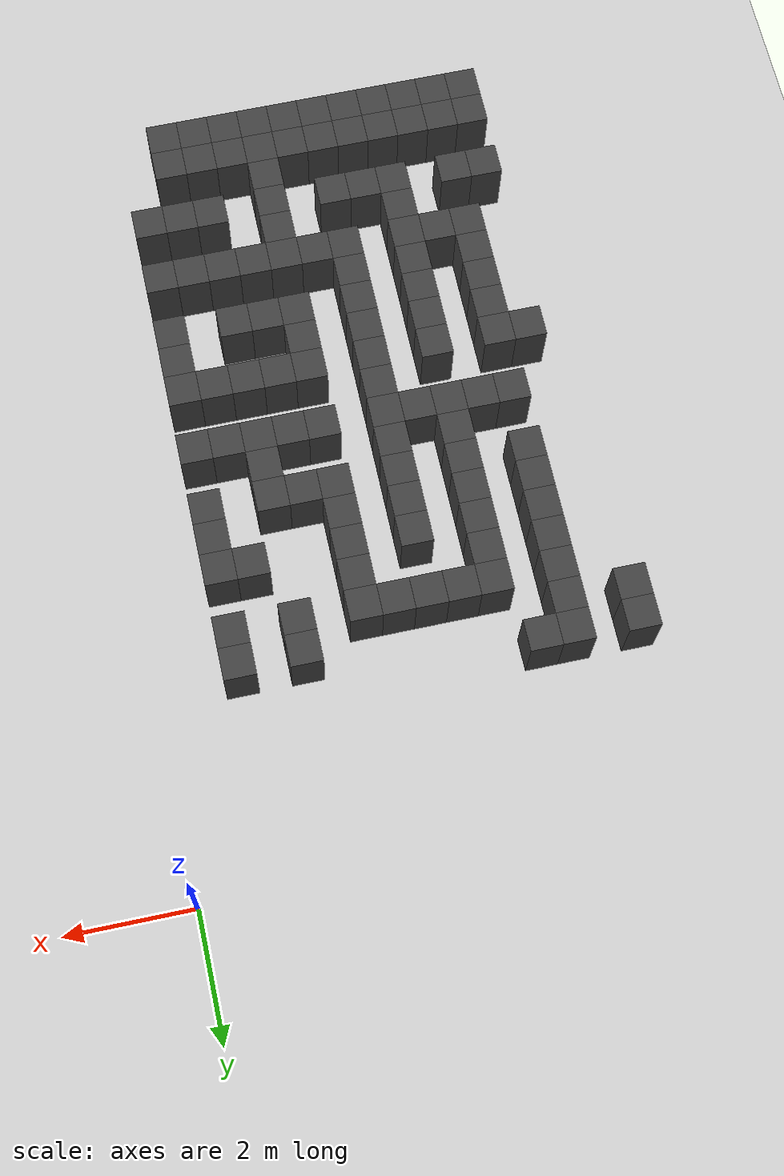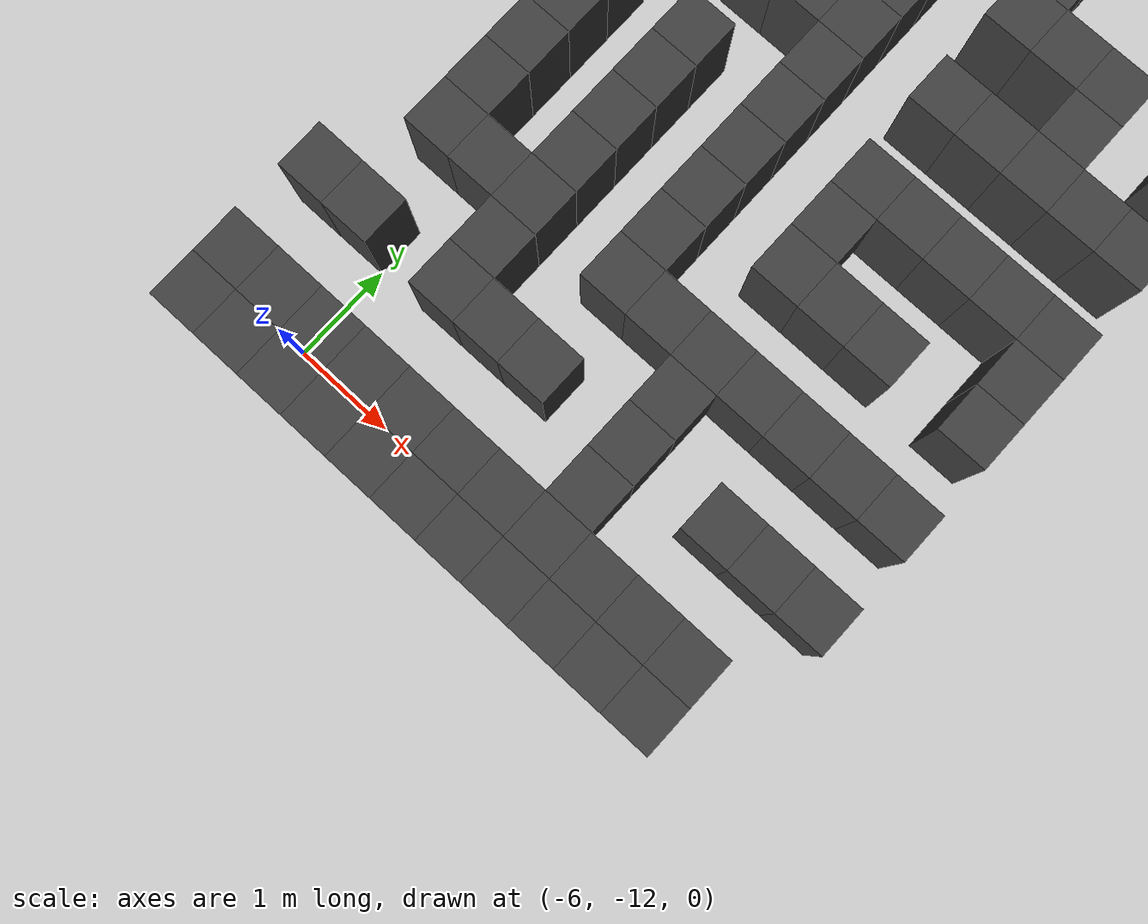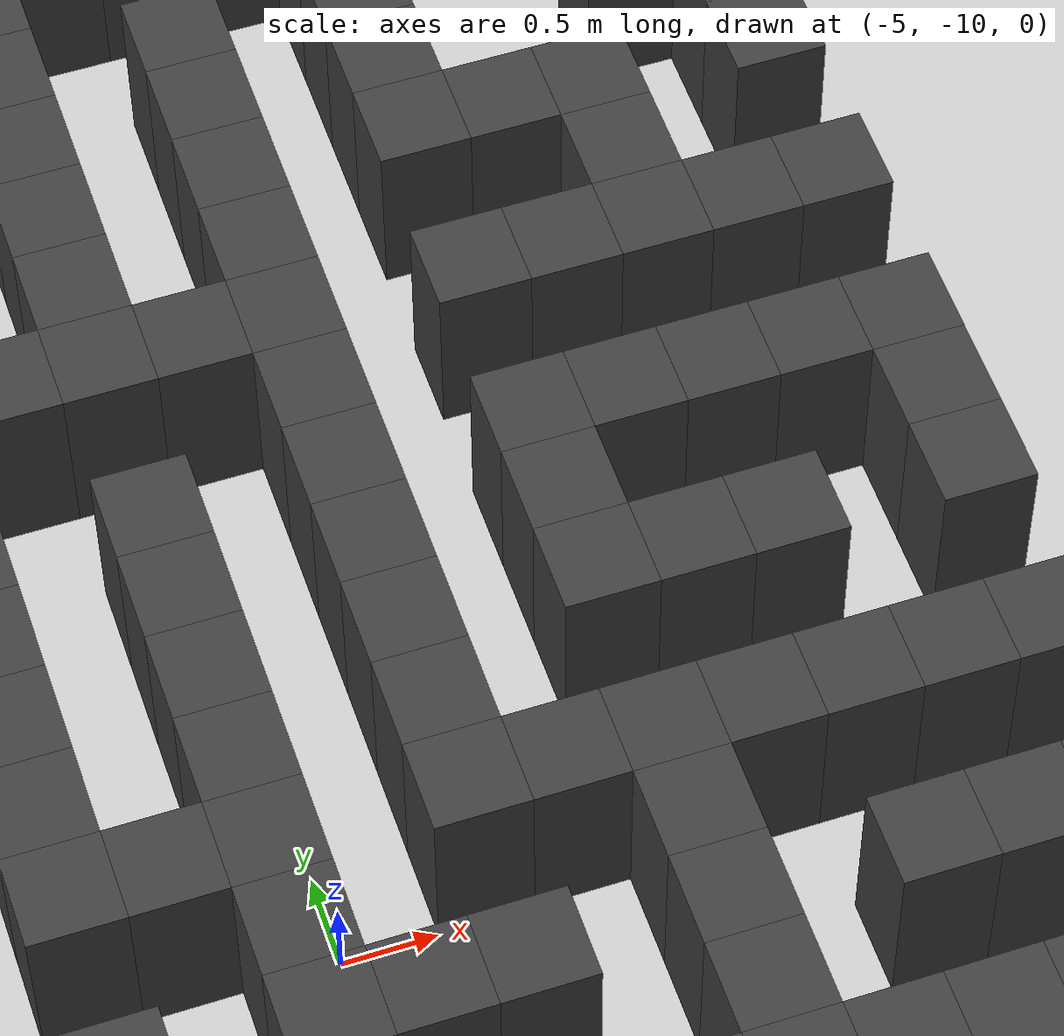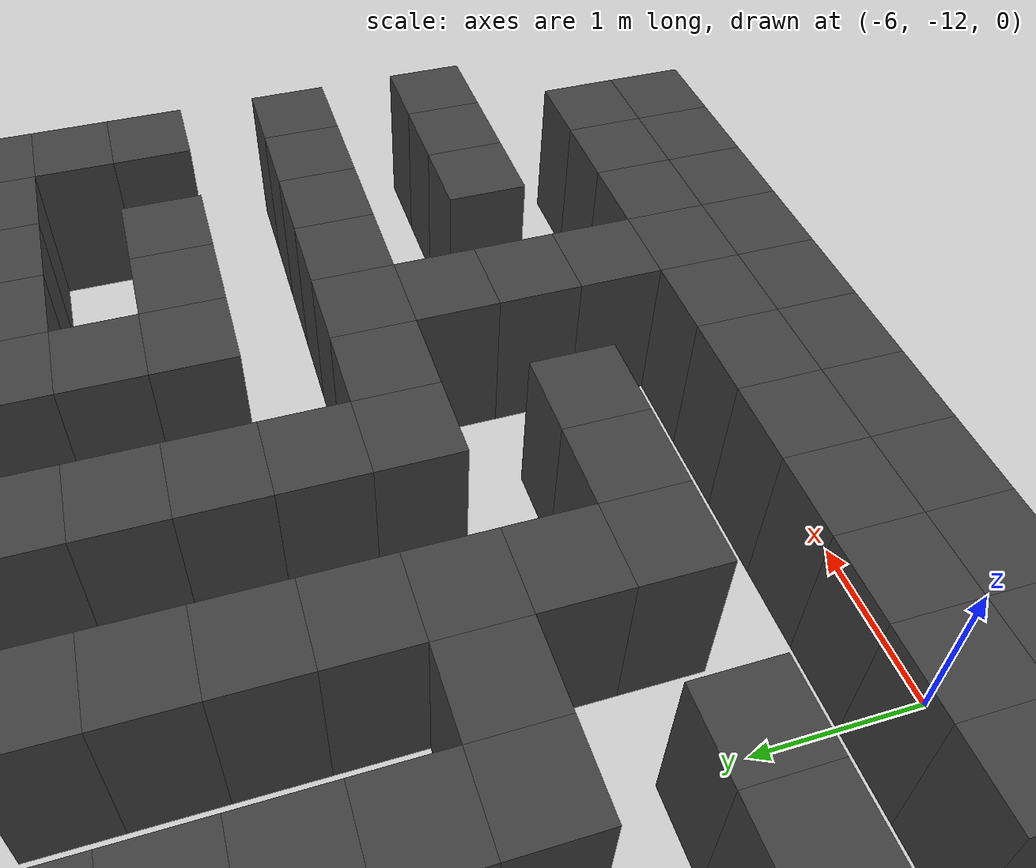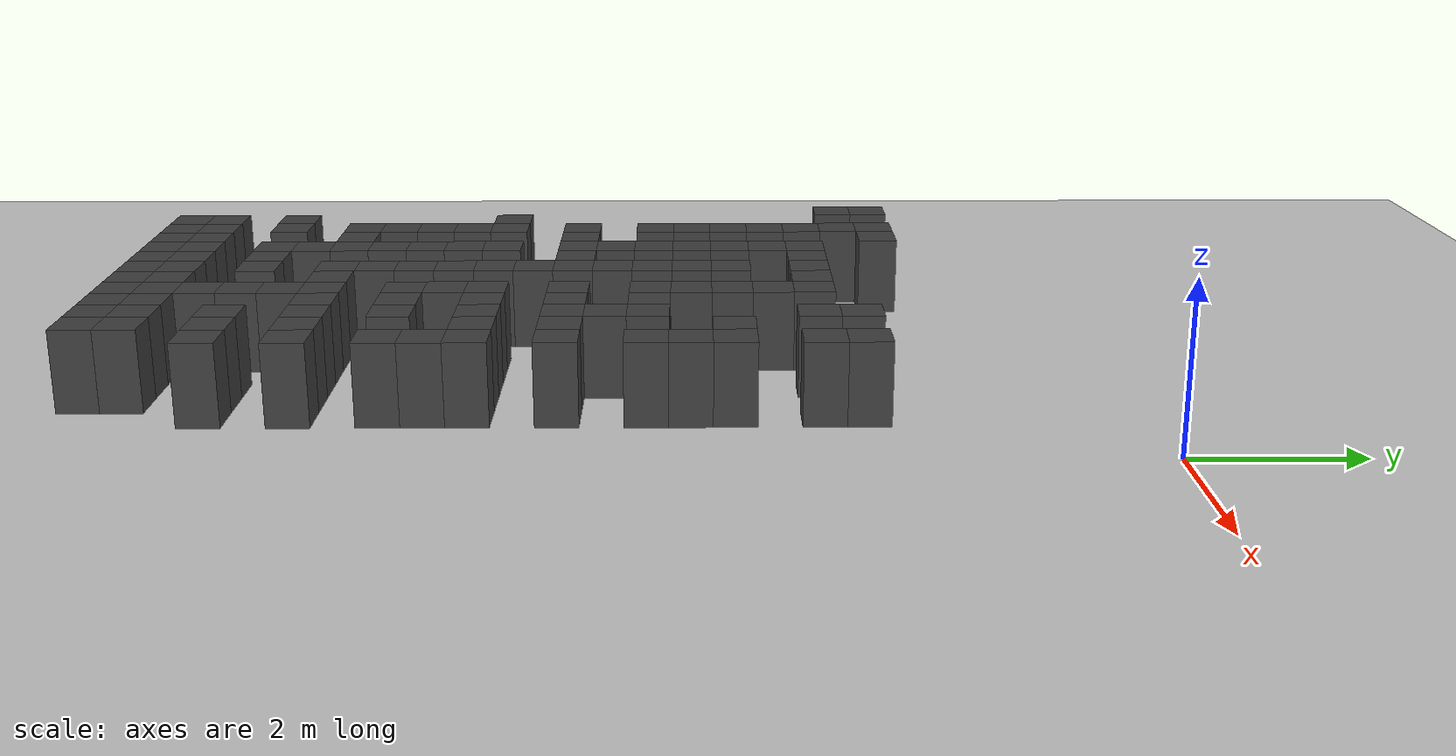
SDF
<sdf version="1.7">
 <world name="map_18332">
  <model name="ground_plane">
   <static>true</static>
   <link name="link">
    <collision name="collision">
     <geometry><plane><normal>0 0 1</normal><size>200 200</size></plane></geometry>
    </collision>
    <visual name="visual">
     <geometry><plane><normal>0 0 1</normal><size>200 200</size></plane></geometry>
     <material><ambient>0.8 0.8 0.8 1</ambient><diffuse>0.8 0.8 0.8 1</diffuse></material>
    </visual>
   </link>
  </model>
  <model name="maze_environment">
   <static>true</static>
   <link name="wall_761">
    <pose>-7.250 -2.750 0.500 0 0 0</pose>
    <collision name="col"><geometry><box><size>0.5 0.5 1.0</size></box></geometry></collision>
    <visual name="vis">
     <geometry><box><size>0.5 0.5 1.0</size></box></geometry>
     <material><ambient>0.15 0.15 0.15 1</ambient><diffuse>0.25 0.25 0.25 1</diffuse></material>
    </visual>
   </link>
   <link name="wall_762">
    <pose>-6.250 -2.750 0.500 0 0 0</pose>
    <collision name="col"><geometry><box><size>0.5 0.5 1.0</size></box></geometry></collision>
    <visual name="vis">
     <geometry><box><size>0.5 0.5 1.0</size></box></geometry>
     <material><ambient>0.15 0.15 0.15 1</ambient><diffuse>0.25 0.25 0.25 1</diffuse></material>
    </visual>
   </link>
   <link name="wall_763">
    <pose>-5.750 -2.750 0.500 0 0 0</pose>
    <collision name="col"><geometry><box><size>0.5 0.5 1.0</size></box></geometry></collision>
    <visual name="vis">
     <geometry><box><size>0.5 0.5 1.0</size></box></geometry>
     <material><ambient>0.15 0.15 0.15 1</ambient><diffuse>0.25 0.25 0.25 1</diffuse></material>
    </visual>
   </link>
   <link name="wall_796">
    <pose>-7.250 -3.250 0.500 0 0 0</pose>
    <collision name="col"><geometry><box><size>0.5 0.5 1.0</size></box></geometry></collision>
    <visual name="vis">
     <geometry><box><size>0.5 0.5 1.0</size></box></geometry>
     <material><ambient>0.15 0.15 0.15 1</ambient><diffuse>0.25 0.25 0.25 1</diffuse></material>
    </visual>
   </link>
   <link name="wall_797">
    <pose>-6.250 -3.250 0.500 0 0 0</pose>
    <collision name="col"><geometry><box><size>0.5 0.5 1.0</size></box></geometry></collision>
    <visual name="vis">
     <geometry><box><size>0.5 0.5 1.0</size></box></geometry>
     <material><ambient>0.15 0.15 0.15 1</ambient><diffuse>0.25 0.25 0.25 1</diffuse></material>
    </visual>
   </link>
   <link name="wall_798">
    <pose>-2.250 -3.250 0.500 0 0 0</pose>
    <collision name="col"><geometry><box><size>0.5 0.5 1.0</size></box></geometry></collision>
    <visual name="vis">
     <geometry><box><size>0.5 0.5 1.0</size></box></geometry>
     <material><ambient>0.15 0.15 0.15 1</ambient><diffuse>0.25 0.25 0.25 1</diffuse></material>
    </visual>
   </link>
   <link name="wall_799">
    <pose>-1.250 -3.250 0.500 0 0 0</pose>
    <collision name="col"><geometry><box><size>0.5 0.5 1.0</size></box></geometry></collision>
    <visual name="vis">
     <geometry><box><size>0.5 0.5 1.0</size></box></geometry>
     <material><ambient>0.15 0.15 0.15 1</ambient><diffuse>0.25 0.25 0.25 1</diffuse></material>
    </visual>
   </link>
   <link name="wall_814">
    <pose>-6.250 -3.750 0.500 0 0 0</pose>
    <collision name="col"><geometry><box><size>0.5 0.5 1.0</size></box></geometry></collision>
    <visual name="vis">
     <geometry><box><size>0.5 0.5 1.0</size></box></geometry>
     <material><ambient>0.15 0.15 0.15 1</ambient><diffuse>0.25 0.25 0.25 1</diffuse></material>
    </visual>
   </link>
   <link name="wall_815">
    <pose>-5.250 -3.750 0.500 0 0 0</pose>
    <collision name="col"><geometry><box><size>0.5 0.5 1.0</size></box></geometry></collision>
    <visual name="vis">
     <geometry><box><size>0.5 0.5 1.0</size></box></geometry>
     <material><ambient>0.15 0.15 0.15 1</ambient><diffuse>0.25 0.25 0.25 1</diffuse></material>
    </visual>
   </link>
   <link name="wall_816">
    <pose>-4.750 -3.750 0.500 0 0 0</pose>
    <collision name="col"><geometry><box><size>0.5 0.5 1.0</size></box></geometry></collision>
    <visual name="vis">
     <geometry><box><size>0.5 0.5 1.0</size></box></geometry>
     <material><ambient>0.15 0.15 0.15 1</ambient><diffuse>0.25 0.25 0.25 1</diffuse></material>
    </visual>
   </link>
   <link name="wall_817">
    <pose>-4.250 -3.750 0.500 0 0 0</pose>
    <collision name="col"><geometry><box><size>0.5 0.5 1.0</size></box></geometry></collision>
    <visual name="vis">
     <geometry><box><size>0.5 0.5 1.0</size></box></geometry>
     <material><ambient>0.15 0.15 0.15 1</ambient><diffuse>0.25 0.25 0.25 1</diffuse></material>
    </visual>
   </link>
   <link name="wall_818">
    <pose>-3.750 -3.750 0.500 0 0 0</pose>
    <collision name="col"><geometry><box><size>0.5 0.5 1.0</size></box></geometry></collision>
    <visual name="vis">
     <geometry><box><size>0.5 0.5 1.0</size></box></geometry>
     <material><ambient>0.15 0.15 0.15 1</ambient><diffuse>0.25 0.25 0.25 1</diffuse></material>
    </visual>
   </link>
   <link name="wall_819">
    <pose>-3.250 -3.750 0.500 0 0 0</pose>
    <collision name="col"><geometry><box><size>0.5 0.5 1.0</size></box></geometry></collision>
    <visual name="vis">
     <geometry><box><size>0.5 0.5 1.0</size></box></geometry>
     <material><ambient>0.15 0.15 0.15 1</ambient><diffuse>0.25 0.25 0.25 1</diffuse></material>
    </visual>
   </link>
   <link name="wall_820">
    <pose>-2.250 -3.750 0.500 0 0 0</pose>
    <collision name="col"><geometry><box><size>0.5 0.5 1.0</size></box></geometry></collision>
    <visual name="vis">
     <geometry><box><size>0.5 0.5 1.0</size></box></geometry>
     <material><ambient>0.15 0.15 0.15 1</ambient><diffuse>0.25 0.25 0.25 1</diffuse></material>
    </visual>
   </link>
   <link name="wall_821">
    <pose>-1.250 -3.750 0.500 0 0 0</pose>
    <collision name="col"><geometry><box><size>0.5 0.5 1.0</size></box></geometry></collision>
    <visual name="vis">
     <geometry><box><size>0.5 0.5 1.0</size></box></geometry>
     <material><ambient>0.15 0.15 0.15 1</ambient><diffuse>0.25 0.25 0.25 1</diffuse></material>
    </visual>
   </link>
   <link name="wall_844">
    <pose>-6.250 -4.250 0.500 0 0 0</pose>
    <collision name="col"><geometry><box><size>0.5 0.5 1.0</size></box></geometry></collision>
    <visual name="vis">
     <geometry><box><size>0.5 0.5 1.0</size></box></geometry>
     <material><ambient>0.15 0.15 0.15 1</ambient><diffuse>0.25 0.25 0.25 1</diffuse></material>
    </visual>
   </link>
   <link name="wall_845">
    <pose>-5.250 -4.250 0.500 0 0 0</pose>
    <collision name="col"><geometry><box><size>0.5 0.5 1.0</size></box></geometry></collision>
    <visual name="vis">
     <geometry><box><size>0.5 0.5 1.0</size></box></geometry>
     <material><ambient>0.15 0.15 0.15 1</ambient><diffuse>0.25 0.25 0.25 1</diffuse></material>
    </visual>
   </link>
   <link name="wall_846">
    <pose>-3.250 -4.250 0.500 0 0 0</pose>
    <collision name="col"><geometry><box><size>0.5 0.5 1.0</size></box></geometry></collision>
    <visual name="vis">
     <geometry><box><size>0.5 0.5 1.0</size></box></geometry>
     <material><ambient>0.15 0.15 0.15 1</ambient><diffuse>0.25 0.25 0.25 1</diffuse></material>
    </visual>
   </link>
   <link name="wall_865">
    <pose>-6.250 -4.750 0.500 0 0 0</pose>
    <collision name="col"><geometry><box><size>0.5 0.5 1.0</size></box></geometry></collision>
    <visual name="vis">
     <geometry><box><size>0.5 0.5 1.0</size></box></geometry>
     <material><ambient>0.15 0.15 0.15 1</ambient><diffuse>0.25 0.25 0.25 1</diffuse></material>
    </visual>
   </link>
   <link name="wall_866">
    <pose>-5.250 -4.750 0.500 0 0 0</pose>
    <collision name="col"><geometry><box><size>0.5 0.5 1.0</size></box></geometry></collision>
    <visual name="vis">
     <geometry><box><size>0.5 0.5 1.0</size></box></geometry>
     <material><ambient>0.15 0.15 0.15 1</ambient><diffuse>0.25 0.25 0.25 1</diffuse></material>
    </visual>
   </link>
   <link name="wall_867">
    <pose>-4.250 -4.750 0.500 0 0 0</pose>
    <collision name="col"><geometry><box><size>0.5 0.5 1.0</size></box></geometry></collision>
    <visual name="vis">
     <geometry><box><size>0.5 0.5 1.0</size></box></geometry>
     <material><ambient>0.15 0.15 0.15 1</ambient><diffuse>0.25 0.25 0.25 1</diffuse></material>
    </visual>
   </link>
   <link name="wall_868">
    <pose>-3.250 -4.750 0.500 0 0 0</pose>
    <collision name="col"><geometry><box><size>0.5 0.5 1.0</size></box></geometry></collision>
    <visual name="vis">
     <geometry><box><size>0.5 0.5 1.0</size></box></geometry>
     <material><ambient>0.15 0.15 0.15 1</ambient><diffuse>0.25 0.25 0.25 1</diffuse></material>
    </visual>
   </link>
   <link name="wall_869">
    <pose>-1.750 -4.750 0.500 0 0 0</pose>
    <collision name="col"><geometry><box><size>0.5 0.5 1.0</size></box></geometry></collision>
    <visual name="vis">
     <geometry><box><size>0.5 0.5 1.0</size></box></geometry>
     <material><ambient>0.15 0.15 0.15 1</ambient><diffuse>0.25 0.25 0.25 1</diffuse></material>
    </visual>
   </link>
   <link name="wall_870">
    <pose>-1.250 -4.750 0.500 0 0 0</pose>
    <collision name="col"><geometry><box><size>0.5 0.5 1.0</size></box></geometry></collision>
    <visual name="vis">
     <geometry><box><size>0.5 0.5 1.0</size></box></geometry>
     <material><ambient>0.15 0.15 0.15 1</ambient><diffuse>0.25 0.25 0.25 1</diffuse></material>
    </visual>
   </link>
   <link name="wall_894">
    <pose>-6.250 -5.250 0.500 0 0 0</pose>
    <collision name="col"><geometry><box><size>0.5 0.5 1.0</size></box></geometry></collision>
    <visual name="vis">
     <geometry><box><size>0.5 0.5 1.0</size></box></geometry>
     <material><ambient>0.15 0.15 0.15 1</ambient><diffuse>0.25 0.25 0.25 1</diffuse></material>
    </visual>
   </link>
   <link name="wall_895">
    <pose>-5.250 -5.250 0.500 0 0 0</pose>
    <collision name="col"><geometry><box><size>0.5 0.5 1.0</size></box></geometry></collision>
    <visual name="vis">
     <geometry><box><size>0.5 0.5 1.0</size></box></geometry>
     <material><ambient>0.15 0.15 0.15 1</ambient><diffuse>0.25 0.25 0.25 1</diffuse></material>
    </visual>
   </link>
   <link name="wall_896">
    <pose>-4.250 -5.250 0.500 0 0 0</pose>
    <collision name="col"><geometry><box><size>0.5 0.5 1.0</size></box></geometry></collision>
    <visual name="vis">
     <geometry><box><size>0.5 0.5 1.0</size></box></geometry>
     <material><ambient>0.15 0.15 0.15 1</ambient><diffuse>0.25 0.25 0.25 1</diffuse></material>
    </visual>
   </link>
   <link name="wall_897">
    <pose>-3.250 -5.250 0.500 0 0 0</pose>
    <collision name="col"><geometry><box><size>0.5 0.5 1.0</size></box></geometry></collision>
    <visual name="vis">
     <geometry><box><size>0.5 0.5 1.0</size></box></geometry>
     <material><ambient>0.15 0.15 0.15 1</ambient><diffuse>0.25 0.25 0.25 1</diffuse></material>
    </visual>
   </link>
   <link name="wall_898">
    <pose>-1.250 -5.250 0.500 0 0 0</pose>
    <collision name="col"><geometry><box><size>0.5 0.5 1.0</size></box></geometry></collision>
    <visual name="vis">
     <geometry><box><size>0.5 0.5 1.0</size></box></geometry>
     <material><ambient>0.15 0.15 0.15 1</ambient><diffuse>0.25 0.25 0.25 1</diffuse></material>
    </visual>
   </link>
   <link name="wall_911">
    <pose>-6.250 -5.750 0.500 0 0 0</pose>
    <collision name="col"><geometry><box><size>0.5 0.5 1.0</size></box></geometry></collision>
    <visual name="vis">
     <geometry><box><size>0.5 0.5 1.0</size></box></geometry>
     <material><ambient>0.15 0.15 0.15 1</ambient><diffuse>0.25 0.25 0.25 1</diffuse></material>
    </visual>
   </link>
   <link name="wall_912">
    <pose>-5.250 -5.750 0.500 0 0 0</pose>
    <collision name="col"><geometry><box><size>0.5 0.5 1.0</size></box></geometry></collision>
    <visual name="vis">
     <geometry><box><size>0.5 0.5 1.0</size></box></geometry>
     <material><ambient>0.15 0.15 0.15 1</ambient><diffuse>0.25 0.25 0.25 1</diffuse></material>
    </visual>
   </link>
   <link name="wall_913">
    <pose>-4.250 -5.750 0.500 0 0 0</pose>
    <collision name="col"><geometry><box><size>0.5 0.5 1.0</size></box></geometry></collision>
    <visual name="vis">
     <geometry><box><size>0.5 0.5 1.0</size></box></geometry>
     <material><ambient>0.15 0.15 0.15 1</ambient><diffuse>0.25 0.25 0.25 1</diffuse></material>
    </visual>
   </link>
   <link name="wall_914">
    <pose>-3.250 -5.750 0.500 0 0 0</pose>
    <collision name="col"><geometry><box><size>0.5 0.5 1.0</size></box></geometry></collision>
    <visual name="vis">
     <geometry><box><size>0.5 0.5 1.0</size></box></geometry>
     <material><ambient>0.15 0.15 0.15 1</ambient><diffuse>0.25 0.25 0.25 1</diffuse></material>
    </visual>
   </link>
   <link name="wall_915">
    <pose>-2.750 -5.750 0.500 0 0 0</pose>
    <collision name="col"><geometry><box><size>0.5 0.5 1.0</size></box></geometry></collision>
    <visual name="vis">
     <geometry><box><size>0.5 0.5 1.0</size></box></geometry>
     <material><ambient>0.15 0.15 0.15 1</ambient><diffuse>0.25 0.25 0.25 1</diffuse></material>
    </visual>
   </link>
   <link name="wall_916">
    <pose>-2.250 -5.750 0.500 0 0 0</pose>
    <collision name="col"><geometry><box><size>0.5 0.5 1.0</size></box></geometry></collision>
    <visual name="vis">
     <geometry><box><size>0.5 0.5 1.0</size></box></geometry>
     <material><ambient>0.15 0.15 0.15 1</ambient><diffuse>0.25 0.25 0.25 1</diffuse></material>
    </visual>
   </link>
   <link name="wall_917">
    <pose>-1.250 -5.750 0.500 0 0 0</pose>
    <collision name="col"><geometry><box><size>0.5 0.5 1.0</size></box></geometry></collision>
    <visual name="vis">
     <geometry><box><size>0.5 0.5 1.0</size></box></geometry>
     <material><ambient>0.15 0.15 0.15 1</ambient><diffuse>0.25 0.25 0.25 1</diffuse></material>
    </visual>
   </link>
   <link name="wall_946">
    <pose>-5.250 -6.250 0.500 0 0 0</pose>
    <collision name="col"><geometry><box><size>0.5 0.5 1.0</size></box></geometry></collision>
    <visual name="vis">
     <geometry><box><size>0.5 0.5 1.0</size></box></geometry>
     <material><ambient>0.15 0.15 0.15 1</ambient><diffuse>0.25 0.25 0.25 1</diffuse></material>
    </visual>
   </link>
   <link name="wall_947">
    <pose>-4.250 -6.250 0.500 0 0 0</pose>
    <collision name="col"><geometry><box><size>0.5 0.5 1.0</size></box></geometry></collision>
    <visual name="vis">
     <geometry><box><size>0.5 0.5 1.0</size></box></geometry>
     <material><ambient>0.15 0.15 0.15 1</ambient><diffuse>0.25 0.25 0.25 1</diffuse></material>
    </visual>
   </link>
   <link name="wall_948">
    <pose>-2.250 -6.250 0.500 0 0 0</pose>
    <collision name="col"><geometry><box><size>0.5 0.5 1.0</size></box></geometry></collision>
    <visual name="vis">
     <geometry><box><size>0.5 0.5 1.0</size></box></geometry>
     <material><ambient>0.15 0.15 0.15 1</ambient><diffuse>0.25 0.25 0.25 1</diffuse></material>
    </visual>
   </link>
   <link name="wall_961">
    <pose>-6.250 -6.750 0.500 0 0 0</pose>
    <collision name="col"><geometry><box><size>0.5 0.5 1.0</size></box></geometry></collision>
    <visual name="vis">
     <geometry><box><size>0.5 0.5 1.0</size></box></geometry>
     <material><ambient>0.15 0.15 0.15 1</ambient><diffuse>0.25 0.25 0.25 1</diffuse></material>
    </visual>
   </link>
   <link name="wall_962">
    <pose>-5.750 -6.750 0.500 0 0 0</pose>
    <collision name="col"><geometry><box><size>0.5 0.5 1.0</size></box></geometry></collision>
    <visual name="vis">
     <geometry><box><size>0.5 0.5 1.0</size></box></geometry>
     <material><ambient>0.15 0.15 0.15 1</ambient><diffuse>0.25 0.25 0.25 1</diffuse></material>
    </visual>
   </link>
   <link name="wall_963">
    <pose>-5.250 -6.750 0.500 0 0 0</pose>
    <collision name="col"><geometry><box><size>0.5 0.5 1.0</size></box></geometry></collision>
    <visual name="vis">
     <geometry><box><size>0.5 0.5 1.0</size></box></geometry>
     <material><ambient>0.15 0.15 0.15 1</ambient><diffuse>0.25 0.25 0.25 1</diffuse></material>
    </visual>
   </link>
   <link name="wall_964">
    <pose>-4.750 -6.750 0.500 0 0 0</pose>
    <collision name="col"><geometry><box><size>0.5 0.5 1.0</size></box></geometry></collision>
    <visual name="vis">
     <geometry><box><size>0.5 0.5 1.0</size></box></geometry>
     <material><ambient>0.15 0.15 0.15 1</ambient><diffuse>0.25 0.25 0.25 1</diffuse></material>
    </visual>
   </link>
   <link name="wall_965">
    <pose>-4.250 -6.750 0.500 0 0 0</pose>
    <collision name="col"><geometry><box><size>0.5 0.5 1.0</size></box></geometry></collision>
    <visual name="vis">
     <geometry><box><size>0.5 0.5 1.0</size></box></geometry>
     <material><ambient>0.15 0.15 0.15 1</ambient><diffuse>0.25 0.25 0.25 1</diffuse></material>
    </visual>
   </link>
   <link name="wall_966">
    <pose>-3.250 -6.750 0.500 0 0 0</pose>
    <collision name="col"><geometry><box><size>0.5 0.5 1.0</size></box></geometry></collision>
    <visual name="vis">
     <geometry><box><size>0.5 0.5 1.0</size></box></geometry>
     <material><ambient>0.15 0.15 0.15 1</ambient><diffuse>0.25 0.25 0.25 1</diffuse></material>
    </visual>
   </link>
   <link name="wall_967">
    <pose>-2.750 -6.750 0.500 0 0 0</pose>
    <collision name="col"><geometry><box><size>0.5 0.5 1.0</size></box></geometry></collision>
    <visual name="vis">
     <geometry><box><size>0.5 0.5 1.0</size></box></geometry>
     <material><ambient>0.15 0.15 0.15 1</ambient><diffuse>0.25 0.25 0.25 1</diffuse></material>
    </visual>
   </link>
   <link name="wall_968">
    <pose>-2.250 -6.750 0.500 0 0 0</pose>
    <collision name="col"><geometry><box><size>0.5 0.5 1.0</size></box></geometry></collision>
    <visual name="vis">
     <geometry><box><size>0.5 0.5 1.0</size></box></geometry>
     <material><ambient>0.15 0.15 0.15 1</ambient><diffuse>0.25 0.25 0.25 1</diffuse></material>
    </visual>
   </link>
   <link name="wall_969">
    <pose>-1.750 -6.750 0.500 0 0 0</pose>
    <collision name="col"><geometry><box><size>0.5 0.5 1.0</size></box></geometry></collision>
    <visual name="vis">
     <geometry><box><size>0.5 0.5 1.0</size></box></geometry>
     <material><ambient>0.15 0.15 0.15 1</ambient><diffuse>0.25 0.25 0.25 1</diffuse></material>
    </visual>
   </link>
   <link name="wall_970">
    <pose>-1.250 -6.750 0.500 0 0 0</pose>
    <collision name="col"><geometry><box><size>0.5 0.5 1.0</size></box></geometry></collision>
    <visual name="vis">
     <geometry><box><size>0.5 0.5 1.0</size></box></geometry>
     <material><ambient>0.15 0.15 0.15 1</ambient><diffuse>0.25 0.25 0.25 1</diffuse></material>
    </visual>
   </link>
   <link name="wall_995">
    <pose>-4.250 -7.250 0.500 0 0 0</pose>
    <collision name="col"><geometry><box><size>0.5 0.5 1.0</size></box></geometry></collision>
    <visual name="vis">
     <geometry><box><size>0.5 0.5 1.0</size></box></geometry>
     <material><ambient>0.15 0.15 0.15 1</ambient><diffuse>0.25 0.25 0.25 1</diffuse></material>
    </visual>
   </link>
   <link name="wall_1013">
    <pose>-6.750 -7.750 0.500 0 0 0</pose>
    <collision name="col"><geometry><box><size>0.5 0.5 1.0</size></box></geometry></collision>
    <visual name="vis">
     <geometry><box><size>0.5 0.5 1.0</size></box></geometry>
     <material><ambient>0.15 0.15 0.15 1</ambient><diffuse>0.25 0.25 0.25 1</diffuse></material>
    </visual>
   </link>
   <link name="wall_1014">
    <pose>-6.250 -7.750 0.500 0 0 0</pose>
    <collision name="col"><geometry><box><size>0.5 0.5 1.0</size></box></geometry></collision>
    <visual name="vis">
     <geometry><box><size>0.5 0.5 1.0</size></box></geometry>
     <material><ambient>0.15 0.15 0.15 1</ambient><diffuse>0.25 0.25 0.25 1</diffuse></material>
    </visual>
   </link>
   <link name="wall_1015">
    <pose>-5.250 -7.750 0.500 0 0 0</pose>
    <collision name="col"><geometry><box><size>0.5 0.5 1.0</size></box></geometry></collision>
    <visual name="vis">
     <geometry><box><size>0.5 0.5 1.0</size></box></geometry>
     <material><ambient>0.15 0.15 0.15 1</ambient><diffuse>0.25 0.25 0.25 1</diffuse></material>
    </visual>
   </link>
   <link name="wall_1016">
    <pose>-4.250 -7.750 0.500 0 0 0</pose>
    <collision name="col"><geometry><box><size>0.5 0.5 1.0</size></box></geometry></collision>
    <visual name="vis">
     <geometry><box><size>0.5 0.5 1.0</size></box></geometry>
     <material><ambient>0.15 0.15 0.15 1</ambient><diffuse>0.25 0.25 0.25 1</diffuse></material>
    </visual>
   </link>
   <link name="wall_1017">
    <pose>-3.250 -7.750 0.500 0 0 0</pose>
    <collision name="col"><geometry><box><size>0.5 0.5 1.0</size></box></geometry></collision>
    <visual name="vis">
     <geometry><box><size>0.5 0.5 1.0</size></box></geometry>
     <material><ambient>0.15 0.15 0.15 1</ambient><diffuse>0.25 0.25 0.25 1</diffuse></material>
    </visual>
   </link>
   <link name="wall_1018">
    <pose>-2.750 -7.750 0.500 0 0 0</pose>
    <collision name="col"><geometry><box><size>0.5 0.5 1.0</size></box></geometry></collision>
    <visual name="vis">
     <geometry><box><size>0.5 0.5 1.0</size></box></geometry>
     <material><ambient>0.15 0.15 0.15 1</ambient><diffuse>0.25 0.25 0.25 1</diffuse></material>
    </visual>
   </link>
   <link name="wall_1019">
    <pose>-2.250 -7.750 0.500 0 0 0</pose>
    <collision name="col"><geometry><box><size>0.5 0.5 1.0</size></box></geometry></collision>
    <visual name="vis">
     <geometry><box><size>0.5 0.5 1.0</size></box></geometry>
     <material><ambient>0.15 0.15 0.15 1</ambient><diffuse>0.25 0.25 0.25 1</diffuse></material>
    </visual>
   </link>
   <link name="wall_1020">
    <pose>-1.750 -7.750 0.500 0 0 0</pose>
    <collision name="col"><geometry><box><size>0.5 0.5 1.0</size></box></geometry></collision>
    <visual name="vis">
     <geometry><box><size>0.5 0.5 1.0</size></box></geometry>
     <material><ambient>0.15 0.15 0.15 1</ambient><diffuse>0.25 0.25 0.25 1</diffuse></material>
    </visual>
   </link>
   <link name="wall_1021">
    <pose>-1.250 -7.750 0.500 0 0 0</pose>
    <collision name="col"><geometry><box><size>0.5 0.5 1.0</size></box></geometry></collision>
    <visual name="vis">
     <geometry><box><size>0.5 0.5 1.0</size></box></geometry>
     <material><ambient>0.15 0.15 0.15 1</ambient><diffuse>0.25 0.25 0.25 1</diffuse></material>
    </visual>
   </link>
   <link name="wall_1039">
    <pose>-6.250 -8.250 0.500 0 0 0</pose>
    <collision name="col"><geometry><box><size>0.5 0.5 1.0</size></box></geometry></collision>
    <visual name="vis">
     <geometry><box><size>0.5 0.5 1.0</size></box></geometry>
     <material><ambient>0.15 0.15 0.15 1</ambient><diffuse>0.25 0.25 0.25 1</diffuse></material>
    </visual>
   </link>
   <link name="wall_1040">
    <pose>-5.250 -8.250 0.500 0 0 0</pose>
    <collision name="col"><geometry><box><size>0.5 0.5 1.0</size></box></geometry></collision>
    <visual name="vis">
     <geometry><box><size>0.5 0.5 1.0</size></box></geometry>
     <material><ambient>0.15 0.15 0.15 1</ambient><diffuse>0.25 0.25 0.25 1</diffuse></material>
    </visual>
   </link>
   <link name="wall_1041">
    <pose>-4.250 -8.250 0.500 0 0 0</pose>
    <collision name="col"><geometry><box><size>0.5 0.5 1.0</size></box></geometry></collision>
    <visual name="vis">
     <geometry><box><size>0.5 0.5 1.0</size></box></geometry>
     <material><ambient>0.15 0.15 0.15 1</ambient><diffuse>0.25 0.25 0.25 1</diffuse></material>
    </visual>
   </link>
   <link name="wall_1042">
    <pose>-3.250 -8.250 0.500 0 0 0</pose>
    <collision name="col"><geometry><box><size>0.5 0.5 1.0</size></box></geometry></collision>
    <visual name="vis">
     <geometry><box><size>0.5 0.5 1.0</size></box></geometry>
     <material><ambient>0.15 0.15 0.15 1</ambient><diffuse>0.25 0.25 0.25 1</diffuse></material>
    </visual>
   </link>
   <link name="wall_1043">
    <pose>-1.250 -8.250 0.500 0 0 0</pose>
    <collision name="col"><geometry><box><size>0.5 0.5 1.0</size></box></geometry></collision>
    <visual name="vis">
     <geometry><box><size>0.5 0.5 1.0</size></box></geometry>
     <material><ambient>0.15 0.15 0.15 1</ambient><diffuse>0.25 0.25 0.25 1</diffuse></material>
    </visual>
   </link>
   <link name="wall_1063">
    <pose>-6.250 -8.750 0.500 0 0 0</pose>
    <collision name="col"><geometry><box><size>0.5 0.5 1.0</size></box></geometry></collision>
    <visual name="vis">
     <geometry><box><size>0.5 0.5 1.0</size></box></geometry>
     <material><ambient>0.15 0.15 0.15 1</ambient><diffuse>0.25 0.25 0.25 1</diffuse></material>
    </visual>
   </link>
   <link name="wall_1064">
    <pose>-5.250 -8.750 0.500 0 0 0</pose>
    <collision name="col"><geometry><box><size>0.5 0.5 1.0</size></box></geometry></collision>
    <visual name="vis">
     <geometry><box><size>0.5 0.5 1.0</size></box></geometry>
     <material><ambient>0.15 0.15 0.15 1</ambient><diffuse>0.25 0.25 0.25 1</diffuse></material>
    </visual>
   </link>
   <link name="wall_1065">
    <pose>-4.250 -8.750 0.500 0 0 0</pose>
    <collision name="col"><geometry><box><size>0.5 0.5 1.0</size></box></geometry></collision>
    <visual name="vis">
     <geometry><box><size>0.5 0.5 1.0</size></box></geometry>
     <material><ambient>0.15 0.15 0.15 1</ambient><diffuse>0.25 0.25 0.25 1</diffuse></material>
    </visual>
   </link>
   <link name="wall_1066">
    <pose>-3.250 -8.750 0.500 0 0 0</pose>
    <collision name="col"><geometry><box><size>0.5 0.5 1.0</size></box></geometry></collision>
    <visual name="vis">
     <geometry><box><size>0.5 0.5 1.0</size></box></geometry>
     <material><ambient>0.15 0.15 0.15 1</ambient><diffuse>0.25 0.25 0.25 1</diffuse></material>
    </visual>
   </link>
   <link name="wall_1067">
    <pose>-2.750 -8.750 0.500 0 0 0</pose>
    <collision name="col"><geometry><box><size>0.5 0.5 1.0</size></box></geometry></collision>
    <visual name="vis">
     <geometry><box><size>0.5 0.5 1.0</size></box></geometry>
     <material><ambient>0.15 0.15 0.15 1</ambient><diffuse>0.25 0.25 0.25 1</diffuse></material>
    </visual>
   </link>
   <link name="wall_1068">
    <pose>-2.250 -8.750 0.500 0 0 0</pose>
    <collision name="col"><geometry><box><size>0.5 0.5 1.0</size></box></geometry></collision>
    <visual name="vis">
     <geometry><box><size>0.5 0.5 1.0</size></box></geometry>
     <material><ambient>0.15 0.15 0.15 1</ambient><diffuse>0.25 0.25 0.25 1</diffuse></material>
    </visual>
   </link>
   <link name="wall_1069">
    <pose>-1.250 -8.750 0.500 0 0 0</pose>
    <collision name="col"><geometry><box><size>0.5 0.5 1.0</size></box></geometry></collision>
    <visual name="vis">
     <geometry><box><size>0.5 0.5 1.0</size></box></geometry>
     <material><ambient>0.15 0.15 0.15 1</ambient><diffuse>0.25 0.25 0.25 1</diffuse></material>
    </visual>
   </link>
   <link name="wall_1093">
    <pose>-6.250 -9.250 0.500 0 0 0</pose>
    <collision name="col"><geometry><box><size>0.5 0.5 1.0</size></box></geometry></collision>
    <visual name="vis">
     <geometry><box><size>0.5 0.5 1.0</size></box></geometry>
     <material><ambient>0.15 0.15 0.15 1</ambient><diffuse>0.25 0.25 0.25 1</diffuse></material>
    </visual>
   </link>
   <link name="wall_1094">
    <pose>-5.250 -9.250 0.500 0 0 0</pose>
    <collision name="col"><geometry><box><size>0.5 0.5 1.0</size></box></geometry></collision>
    <visual name="vis">
     <geometry><box><size>0.5 0.5 1.0</size></box></geometry>
     <material><ambient>0.15 0.15 0.15 1</ambient><diffuse>0.25 0.25 0.25 1</diffuse></material>
    </visual>
   </link>
   <link name="wall_1095">
    <pose>-4.250 -9.250 0.500 0 0 0</pose>
    <collision name="col"><geometry><box><size>0.5 0.5 1.0</size></box></geometry></collision>
    <visual name="vis">
     <geometry><box><size>0.5 0.5 1.0</size></box></geometry>
     <material><ambient>0.15 0.15 0.15 1</ambient><diffuse>0.25 0.25 0.25 1</diffuse></material>
    </visual>
   </link>
   <link name="wall_1113">
    <pose>-6.250 -9.750 0.500 0 0 0</pose>
    <collision name="col"><geometry><box><size>0.5 0.5 1.0</size></box></geometry></collision>
    <visual name="vis">
     <geometry><box><size>0.5 0.5 1.0</size></box></geometry>
     <material><ambient>0.15 0.15 0.15 1</ambient><diffuse>0.25 0.25 0.25 1</diffuse></material>
    </visual>
   </link>
   <link name="wall_1114">
    <pose>-5.750 -9.750 0.500 0 0 0</pose>
    <collision name="col"><geometry><box><size>0.5 0.5 1.0</size></box></geometry></collision>
    <visual name="vis">
     <geometry><box><size>0.5 0.5 1.0</size></box></geometry>
     <material><ambient>0.15 0.15 0.15 1</ambient><diffuse>0.25 0.25 0.25 1</diffuse></material>
    </visual>
   </link>
   <link name="wall_1115">
    <pose>-5.250 -9.750 0.500 0 0 0</pose>
    <collision name="col"><geometry><box><size>0.5 0.5 1.0</size></box></geometry></collision>
    <visual name="vis">
     <geometry><box><size>0.5 0.5 1.0</size></box></geometry>
     <material><ambient>0.15 0.15 0.15 1</ambient><diffuse>0.25 0.25 0.25 1</diffuse></material>
    </visual>
   </link>
   <link name="wall_1116">
    <pose>-4.250 -9.750 0.500 0 0 0</pose>
    <collision name="col"><geometry><box><size>0.5 0.5 1.0</size></box></geometry></collision>
    <visual name="vis">
     <geometry><box><size>0.5 0.5 1.0</size></box></geometry>
     <material><ambient>0.15 0.15 0.15 1</ambient><diffuse>0.25 0.25 0.25 1</diffuse></material>
    </visual>
   </link>
   <link name="wall_1117">
    <pose>-3.750 -9.750 0.500 0 0 0</pose>
    <collision name="col"><geometry><box><size>0.5 0.5 1.0</size></box></geometry></collision>
    <visual name="vis">
     <geometry><box><size>0.5 0.5 1.0</size></box></geometry>
     <material><ambient>0.15 0.15 0.15 1</ambient><diffuse>0.25 0.25 0.25 1</diffuse></material>
    </visual>
   </link>
   <link name="wall_1118">
    <pose>-3.250 -9.750 0.500 0 0 0</pose>
    <collision name="col"><geometry><box><size>0.5 0.5 1.0</size></box></geometry></collision>
    <visual name="vis">
     <geometry><box><size>0.5 0.5 1.0</size></box></geometry>
     <material><ambient>0.15 0.15 0.15 1</ambient><diffuse>0.25 0.25 0.25 1</diffuse></material>
    </visual>
   </link>
   <link name="wall_1119">
    <pose>-2.750 -9.750 0.500 0 0 0</pose>
    <collision name="col"><geometry><box><size>0.5 0.5 1.0</size></box></geometry></collision>
    <visual name="vis">
     <geometry><box><size>0.5 0.5 1.0</size></box></geometry>
     <material><ambient>0.15 0.15 0.15 1</ambient><diffuse>0.25 0.25 0.25 1</diffuse></material>
    </visual>
   </link>
   <link name="wall_1120">
    <pose>-2.250 -9.750 0.500 0 0 0</pose>
    <collision name="col"><geometry><box><size>0.5 0.5 1.0</size></box></geometry></collision>
    <visual name="vis">
     <geometry><box><size>0.5 0.5 1.0</size></box></geometry>
     <material><ambient>0.15 0.15 0.15 1</ambient><diffuse>0.25 0.25 0.25 1</diffuse></material>
    </visual>
   </link>
   <link name="wall_1121">
    <pose>-1.750 -9.750 0.500 0 0 0</pose>
    <collision name="col"><geometry><box><size>0.5 0.5 1.0</size></box></geometry></collision>
    <visual name="vis">
     <geometry><box><size>0.5 0.5 1.0</size></box></geometry>
     <material><ambient>0.15 0.15 0.15 1</ambient><diffuse>0.25 0.25 0.25 1</diffuse></material>
    </visual>
   </link>
   <link name="wall_1122">
    <pose>-1.250 -9.750 0.500 0 0 0</pose>
    <collision name="col"><geometry><box><size>0.5 0.5 1.0</size></box></geometry></collision>
    <visual name="vis">
     <geometry><box><size>0.5 0.5 1.0</size></box></geometry>
     <material><ambient>0.15 0.15 0.15 1</ambient><diffuse>0.25 0.25 0.25 1</diffuse></material>
    </visual>
   </link>
   <link name="wall_1147">
    <pose>-5.250 -10.250 0.500 0 0 0</pose>
    <collision name="col"><geometry><box><size>0.5 0.5 1.0</size></box></geometry></collision>
    <visual name="vis">
     <geometry><box><size>0.5 0.5 1.0</size></box></geometry>
     <material><ambient>0.15 0.15 0.15 1</ambient><diffuse>0.25 0.25 0.25 1</diffuse></material>
    </visual>
   </link>
   <link name="wall_1148">
    <pose>-3.250 -10.250 0.500 0 0 0</pose>
    <collision name="col"><geometry><box><size>0.5 0.5 1.0</size></box></geometry></collision>
    <visual name="vis">
     <geometry><box><size>0.5 0.5 1.0</size></box></geometry>
     <material><ambient>0.15 0.15 0.15 1</ambient><diffuse>0.25 0.25 0.25 1</diffuse></material>
    </visual>
   </link>
   <link name="wall_1163">
    <pose>-6.750 -10.750 0.500 0 0 0</pose>
    <collision name="col"><geometry><box><size>0.5 0.5 1.0</size></box></geometry></collision>
    <visual name="vis">
     <geometry><box><size>0.5 0.5 1.0</size></box></geometry>
     <material><ambient>0.15 0.15 0.15 1</ambient><diffuse>0.25 0.25 0.25 1</diffuse></material>
    </visual>
   </link>
   <link name="wall_1164">
    <pose>-6.250 -10.750 0.500 0 0 0</pose>
    <collision name="col"><geometry><box><size>0.5 0.5 1.0</size></box></geometry></collision>
    <visual name="vis">
     <geometry><box><size>0.5 0.5 1.0</size></box></geometry>
     <material><ambient>0.15 0.15 0.15 1</ambient><diffuse>0.25 0.25 0.25 1</diffuse></material>
    </visual>
   </link>
   <link name="wall_1165">
    <pose>-5.250 -10.750 0.500 0 0 0</pose>
    <collision name="col"><geometry><box><size>0.5 0.5 1.0</size></box></geometry></collision>
    <visual name="vis">
     <geometry><box><size>0.5 0.5 1.0</size></box></geometry>
     <material><ambient>0.15 0.15 0.15 1</ambient><diffuse>0.25 0.25 0.25 1</diffuse></material>
    </visual>
   </link>
   <link name="wall_1166">
    <pose>-4.750 -10.750 0.500 0 0 0</pose>
    <collision name="col"><geometry><box><size>0.5 0.5 1.0</size></box></geometry></collision>
    <visual name="vis">
     <geometry><box><size>0.5 0.5 1.0</size></box></geometry>
     <material><ambient>0.15 0.15 0.15 1</ambient><diffuse>0.25 0.25 0.25 1</diffuse></material>
    </visual>
   </link>
   <link name="wall_1167">
    <pose>-4.250 -10.750 0.500 0 0 0</pose>
    <collision name="col"><geometry><box><size>0.5 0.5 1.0</size></box></geometry></collision>
    <visual name="vis">
     <geometry><box><size>0.5 0.5 1.0</size></box></geometry>
     <material><ambient>0.15 0.15 0.15 1</ambient><diffuse>0.25 0.25 0.25 1</diffuse></material>
    </visual>
   </link>
   <link name="wall_1168">
    <pose>-3.250 -10.750 0.500 0 0 0</pose>
    <collision name="col"><geometry><box><size>0.5 0.5 1.0</size></box></geometry></collision>
    <visual name="vis">
     <geometry><box><size>0.5 0.5 1.0</size></box></geometry>
     <material><ambient>0.15 0.15 0.15 1</ambient><diffuse>0.25 0.25 0.25 1</diffuse></material>
    </visual>
   </link>
   <link name="wall_1169">
    <pose>-2.250 -10.750 0.500 0 0 0</pose>
    <collision name="col"><geometry><box><size>0.5 0.5 1.0</size></box></geometry></collision>
    <visual name="vis">
     <geometry><box><size>0.5 0.5 1.0</size></box></geometry>
     <material><ambient>0.15 0.15 0.15 1</ambient><diffuse>0.25 0.25 0.25 1</diffuse></material>
    </visual>
   </link>
   <link name="wall_1170">
    <pose>-1.750 -10.750 0.500 0 0 0</pose>
    <collision name="col"><geometry><box><size>0.5 0.5 1.0</size></box></geometry></collision>
    <visual name="vis">
     <geometry><box><size>0.5 0.5 1.0</size></box></geometry>
     <material><ambient>0.15 0.15 0.15 1</ambient><diffuse>0.25 0.25 0.25 1</diffuse></material>
    </visual>
   </link>
   <link name="wall_1171">
    <pose>-1.250 -10.750 0.500 0 0 0</pose>
    <collision name="col"><geometry><box><size>0.5 0.5 1.0</size></box></geometry></collision>
    <visual name="vis">
     <geometry><box><size>0.5 0.5 1.0</size></box></geometry>
     <material><ambient>0.15 0.15 0.15 1</ambient><diffuse>0.25 0.25 0.25 1</diffuse></material>
    </visual>
   </link>
   <link name="wall_1191">
    <pose>-3.250 -11.250 0.500 0 0 0</pose>
    <collision name="col"><geometry><box><size>0.5 0.5 1.0</size></box></geometry></collision>
    <visual name="vis">
     <geometry><box><size>0.5 0.5 1.0</size></box></geometry>
     <material><ambient>0.15 0.15 0.15 1</ambient><diffuse>0.25 0.25 0.25 1</diffuse></material>
    </visual>
   </link>
   <link name="wall_1206">
    <pose>-6.750 -11.750 0.500 0 0 0</pose>
    <collision name="col"><geometry><box><size>0.5 0.5 1.0</size></box></geometry></collision>
    <visual name="vis">
     <geometry><box><size>0.5 0.5 1.0</size></box></geometry>
     <material><ambient>0.15 0.15 0.15 1</ambient><diffuse>0.25 0.25 0.25 1</diffuse></material>
    </visual>
   </link>
   <link name="wall_1207">
    <pose>-6.250 -11.750 0.500 0 0 0</pose>
    <collision name="col"><geometry><box><size>0.5 0.5 1.0</size></box></geometry></collision>
    <visual name="vis">
     <geometry><box><size>0.5 0.5 1.0</size></box></geometry>
     <material><ambient>0.15 0.15 0.15 1</ambient><diffuse>0.25 0.25 0.25 1</diffuse></material>
    </visual>
   </link>
   <link name="wall_1208">
    <pose>-5.750 -11.750 0.500 0 0 0</pose>
    <collision name="col"><geometry><box><size>0.5 0.5 1.0</size></box></geometry></collision>
    <visual name="vis">
     <geometry><box><size>0.5 0.5 1.0</size></box></geometry>
     <material><ambient>0.15 0.15 0.15 1</ambient><diffuse>0.25 0.25 0.25 1</diffuse></material>
    </visual>
   </link>
   <link name="wall_1209">
    <pose>-5.250 -11.750 0.500 0 0 0</pose>
    <collision name="col"><geometry><box><size>0.5 0.5 1.0</size></box></geometry></collision>
    <visual name="vis">
     <geometry><box><size>0.5 0.5 1.0</size></box></geometry>
     <material><ambient>0.15 0.15 0.15 1</ambient><diffuse>0.25 0.25 0.25 1</diffuse></material>
    </visual>
   </link>
   <link name="wall_1210">
    <pose>-4.750 -11.750 0.500 0 0 0</pose>
    <collision name="col"><geometry><box><size>0.5 0.5 1.0</size></box></geometry></collision>
    <visual name="vis">
     <geometry><box><size>0.5 0.5 1.0</size></box></geometry>
     <material><ambient>0.15 0.15 0.15 1</ambient><diffuse>0.25 0.25 0.25 1</diffuse></material>
    </visual>
   </link>
   <link name="wall_1211">
    <pose>-4.250 -11.750 0.500 0 0 0</pose>
    <collision name="col"><geometry><box><size>0.5 0.5 1.0</size></box></geometry></collision>
    <visual name="vis">
     <geometry><box><size>0.5 0.5 1.0</size></box></geometry>
     <material><ambient>0.15 0.15 0.15 1</ambient><diffuse>0.25 0.25 0.25 1</diffuse></material>
    </visual>
   </link>
   <link name="wall_1212">
    <pose>-3.750 -11.750 0.500 0 0 0</pose>
    <collision name="col"><geometry><box><size>0.5 0.5 1.0</size></box></geometry></collision>
    <visual name="vis">
     <geometry><box><size>0.5 0.5 1.0</size></box></geometry>
     <material><ambient>0.15 0.15 0.15 1</ambient><diffuse>0.25 0.25 0.25 1</diffuse></material>
    </visual>
   </link>
   <link name="wall_1213">
    <pose>-3.250 -11.750 0.500 0 0 0</pose>
    <collision name="col"><geometry><box><size>0.5 0.5 1.0</size></box></geometry></collision>
    <visual name="vis">
     <geometry><box><size>0.5 0.5 1.0</size></box></geometry>
     <material><ambient>0.15 0.15 0.15 1</ambient><diffuse>0.25 0.25 0.25 1</diffuse></material>
    </visual>
   </link>
   <link name="wall_1214">
    <pose>-2.750 -11.750 0.500 0 0 0</pose>
    <collision name="col"><geometry><box><size>0.5 0.5 1.0</size></box></geometry></collision>
    <visual name="vis">
     <geometry><box><size>0.5 0.5 1.0</size></box></geometry>
     <material><ambient>0.15 0.15 0.15 1</ambient><diffuse>0.25 0.25 0.25 1</diffuse></material>
    </visual>
   </link>
   <link name="wall_1215">
    <pose>-2.250 -11.750 0.500 0 0 0</pose>
    <collision name="col"><geometry><box><size>0.5 0.5 1.0</size></box></geometry></collision>
    <visual name="vis">
     <geometry><box><size>0.5 0.5 1.0</size></box></geometry>
     <material><ambient>0.15 0.15 0.15 1</ambient><diffuse>0.25 0.25 0.25 1</diffuse></material>
    </visual>
   </link>
   <link name="wall_1216">
    <pose>-1.750 -11.750 0.500 0 0 0</pose>
    <collision name="col"><geometry><box><size>0.5 0.5 1.0</size></box></geometry></collision>
    <visual name="vis">
     <geometry><box><size>0.5 0.5 1.0</size></box></geometry>
     <material><ambient>0.15 0.15 0.15 1</ambient><diffuse>0.25 0.25 0.25 1</diffuse></material>
    </visual>
   </link>
   <link name="wall_1254">
    <pose>-6.750 -12.250 0.500 0 0 0</pose>
    <collision name="col"><geometry><box><size>0.5 0.5 1.0</size></box></geometry></collision>
    <visual name="vis">
     <geometry><box><size>0.5 0.5 1.0</size></box></geometry>
     <material><ambient>0.15 0.15 0.15 1</ambient><diffuse>0.25 0.25 0.25 1</diffuse></material>
    </visual>
   </link>
   <link name="wall_1255">
    <pose>-6.250 -12.250 0.500 0 0 0</pose>
    <collision name="col"><geometry><box><size>0.5 0.5 1.0</size></box></geometry></collision>
    <visual name="vis">
     <geometry><box><size>0.5 0.5 1.0</size></box></geometry>
     <material><ambient>0.15 0.15 0.15 1</ambient><diffuse>0.25 0.25 0.25 1</diffuse></material>
    </visual>
   </link>
   <link name="wall_1256">
    <pose>-5.750 -12.250 0.500 0 0 0</pose>
    <collision name="col"><geometry><box><size>0.5 0.5 1.0</size></box></geometry></collision>
    <visual name="vis">
     <geometry><box><size>0.5 0.5 1.0</size></box></geometry>
     <material><ambient>0.15 0.15 0.15 1</ambient><diffuse>0.25 0.25 0.25 1</diffuse></material>
    </visual>
   </link>
   <link name="wall_1257">
    <pose>-5.250 -12.250 0.500 0 0 0</pose>
    <collision name="col"><geometry><box><size>0.5 0.5 1.0</size></box></geometry></collision>
    <visual name="vis">
     <geometry><box><size>0.5 0.5 1.0</size></box></geometry>
     <material><ambient>0.15 0.15 0.15 1</ambient><diffuse>0.25 0.25 0.25 1</diffuse></material>
    </visual>
   </link>
   <link name="wall_1258">
    <pose>-4.750 -12.250 0.500 0 0 0</pose>
    <collision name="col"><geometry><box><size>0.5 0.5 1.0</size></box></geometry></collision>
    <visual name="vis">
     <geometry><box><size>0.5 0.5 1.0</size></box></geometry>
     <material><ambient>0.15 0.15 0.15 1</ambient><diffuse>0.25 0.25 0.25 1</diffuse></material>
    </visual>
   </link>
   <link name="wall_1259">
    <pose>-4.250 -12.250 0.500 0 0 0</pose>
    <collision name="col"><geometry><box><size>0.5 0.5 1.0</size></box></geometry></collision>
    <visual name="vis">
     <geometry><box><size>0.5 0.5 1.0</size></box></geometry>
     <material><ambient>0.15 0.15 0.15 1</ambient><diffuse>0.25 0.25 0.25 1</diffuse></material>
    </visual>
   </link>
   <link name="wall_1260">
    <pose>-3.750 -12.250 0.500 0 0 0</pose>
    <collision name="col"><geometry><box><size>0.5 0.5 1.0</size></box></geometry></collision>
    <visual name="vis">
     <geometry><box><size>0.5 0.5 1.0</size></box></geometry>
     <material><ambient>0.15 0.15 0.15 1</ambient><diffuse>0.25 0.25 0.25 1</diffuse></material>
    </visual>
   </link>
   <link name="wall_1261">
    <pose>-3.250 -12.250 0.500 0 0 0</pose>
    <collision name="col"><geometry><box><size>0.5 0.5 1.0</size></box></geometry></collision>
    <visual name="vis">
     <geometry><box><size>0.5 0.5 1.0</size></box></geometry>
     <material><ambient>0.15 0.15 0.15 1</ambient><diffuse>0.25 0.25 0.25 1</diffuse></material>
    </visual>
   </link>
   <link name="wall_1262">
    <pose>-2.750 -12.250 0.500 0 0 0</pose>
    <collision name="col"><geometry><box><size>0.5 0.5 1.0</size></box></geometry></collision>
    <visual name="vis">
     <geometry><box><size>0.5 0.5 1.0</size></box></geometry>
     <material><ambient>0.15 0.15 0.15 1</ambient><diffuse>0.25 0.25 0.25 1</diffuse></material>
    </visual>
   </link>
   <link name="wall_1263">
    <pose>-2.250 -12.250 0.500 0 0 0</pose>
    <collision name="col"><geometry><box><size>0.5 0.5 1.0</size></box></geometry></collision>
    <visual name="vis">
     <geometry><box><size>0.5 0.5 1.0</size></box></geometry>
     <material><ambient>0.15 0.15 0.15 1</ambient><diffuse>0.25 0.25 0.25 1</diffuse></material>
    </visual>
   </link>
   <link name="wall_1264">
    <pose>-1.750 -12.250 0.500 0 0 0</pose>
    <collision name="col"><geometry><box><size>0.5 0.5 1.0</size></box></geometry></collision>
    <visual name="vis">
     <geometry><box><size>0.5 0.5 1.0</size></box></geometry>
     <material><ambient>0.15 0.15 0.15 1</ambient><diffuse>0.25 0.25 0.25 1</diffuse></material>
    </visual>
   </link>
  </model>
 </world>
</sdf>
